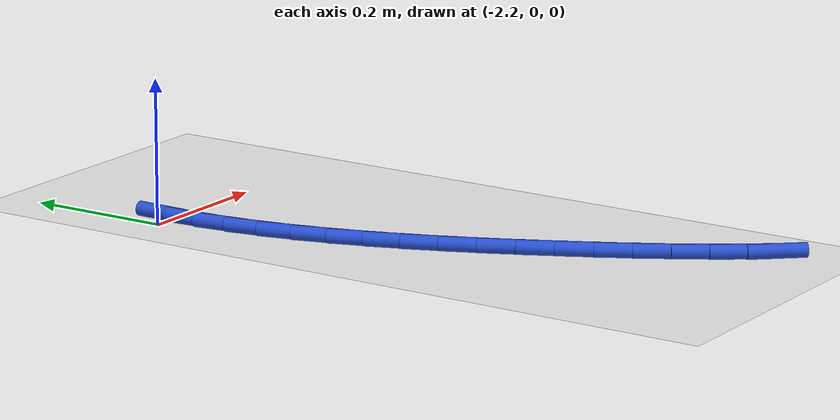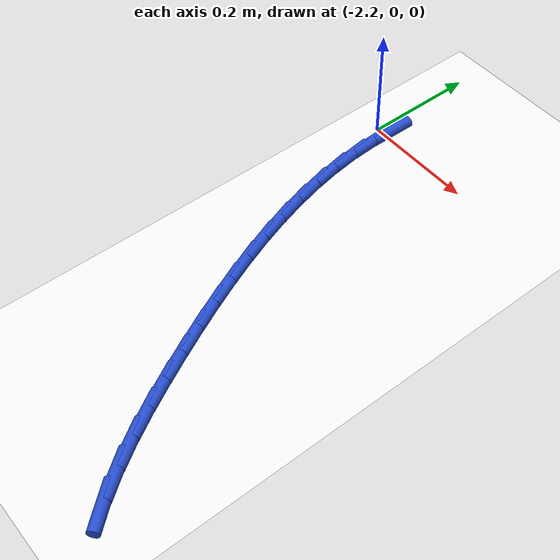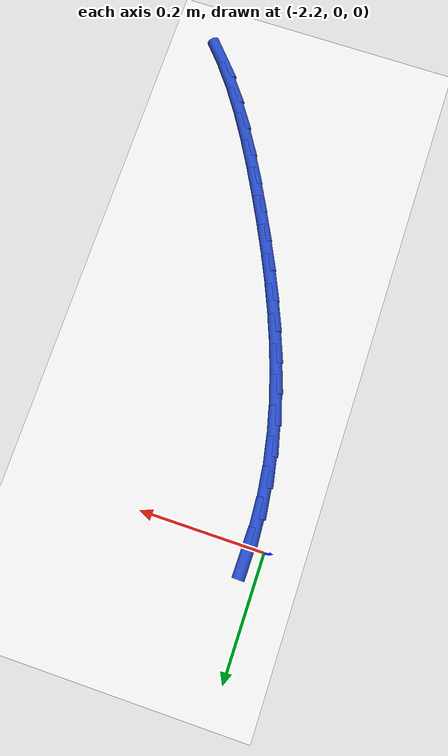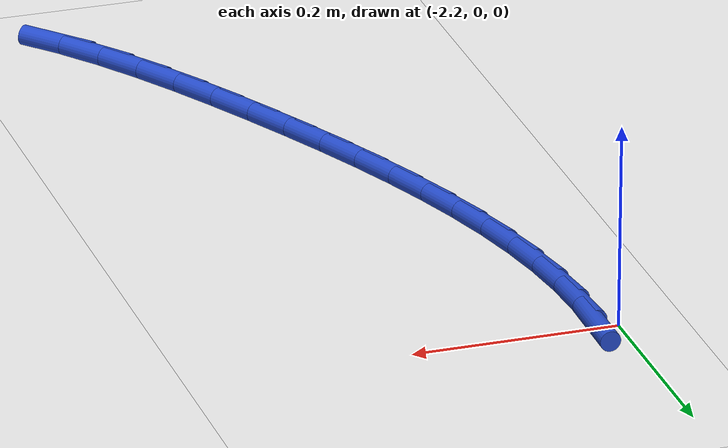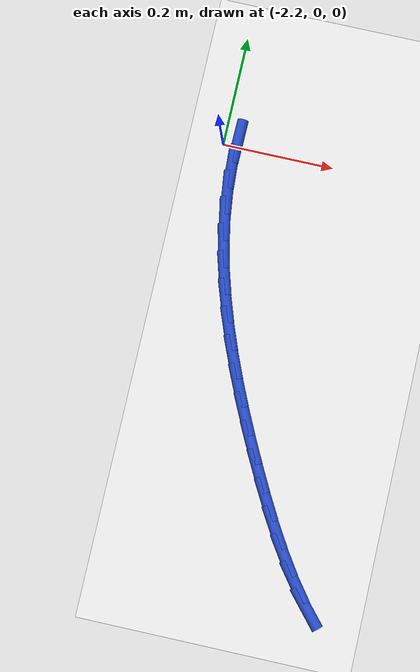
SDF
<sdf version="1.6">
 <world name="default">
  <model name="ground_plane">
   <static>1</static>
   <link name="link">
    <collision name="collision">
     <geometry><plane><normal>0 0 1</normal><size>100 100</size></plane></geometry>
     <surface><friction><ode><mu>100</mu><mu2>50</mu2></ode></friction></surface>
    </collision>
    <visual name="visual">
     <cast_shadows>0</cast_shadows>
     <geometry><plane><normal>0 0 1</normal><size>100 100</size></plane></geometry>
     <material>
      <script><uri>file://media/materials/scripts/gazebo.material</uri><name>Gazebo/WhiteGlow</name></script>
     </material>
    </visual>
   </link>
  </model>
  <model name="line">
   <link name="link_71">
    <pose>-2.1751159300494733 0.008922689165223733 0.01 0 1.57 1.5581462477677612</pose>
    <collision name="collision">
     <geometry><cylinder><radius>0.01</radius><length>0.08</length></cylinder></geometry>
    </collision>
    <visual name="visual">
     <material>
      <script><name>Gazebo/Blue</name><uri>file://media/materials/scripts/gazebo.material</uri></script>
     </material>
     <geometry><cylinder><radius>0.01</radius><length>0.08</length></cylinder></geometry>
    </visual>
   </link>
   <link name="link_72">
    <pose>-2.175711242106823 -0.03813474825442996 0.01 0 1.57 -1.5105609952214545</pose>
    <collision name="collision">
     <geometry><cylinder><radius>0.01</radius><length>0.08</length></cylinder></geometry>
    </collision>
    <visual name="visual">
     <material>
      <script><name>Gazebo/Blue</name><uri>file://media/materials/scripts/gazebo.material</uri></script>
     </material>
     <geometry><cylinder><radius>0.01</radius><length>0.08</length></cylinder></geometry>
    </visual>
   </link>
   <link name="link_73">
    <pose>-2.1728652472345336 -0.08532552364630551 0.01 0 1.57 -1.4439456758171754</pose>
    <collision name="collision">
     <geometry><cylinder><radius>0.01</radius><length>0.08</length></cylinder></geometry>
    </collision>
    <visual name="visual">
     <material>
      <script><name>Gazebo/Blue</name><uri>file://media/materials/scripts/gazebo.material</uri></script>
     </material>
     <geometry><cylinder><radius>0.01</radius><length>0.08</length></cylinder></geometry>
    </visual>
   </link>
   <link name="link_74">
    <pose>-2.1668377247913315 -0.1325870699213663 0.01 0 1.57 -1.3836874695277264</pose>
    <collision name="collision">
     <geometry><cylinder><radius>0.01</radius><length>0.08</length></cylinder></geometry>
    </collision>
    <visual name="visual">
     <material>
      <script><name>Gazebo/Blue</name><uri>file://media/materials/scripts/gazebo.material</uri></script>
     </material>
     <geometry><cylinder><radius>0.01</radius><length>0.08</length></cylinder></geometry>
    </visual>
   </link>
   <link name="link_75">
    <pose>-2.157888454135941 -0.17985681999057757 0.01 0 1.57 -1.3296607037092547</pose>
    <collision name="collision">
     <geometry><cylinder><radius>0.01</radius><length>0.08</length></cylinder></geometry>
    </collision>
    <visual name="visual">
     <material>
      <script><name>Gazebo/Blue</name><uri>file://media/materials/scripts/gazebo.material</uri></script>
     </material>
     <geometry><cylinder><radius>0.01</radius><length>0.08</length></cylinder></geometry>
    </visual>
   </link>
   <link name="link_76">
    <pose>-2.1462772146270885 -0.227072206764904 0.01 0 1.57 -1.2816027309727647</pose>
    <collision name="collision">
     <geometry><cylinder><radius>0.01</radius><length>0.08</length></cylinder></geometry>
    </collision>
    <visual name="visual">
     <material>
      <script><name>Gazebo/Blue</name><uri>file://media/materials/scripts/gazebo.material</uri></script>
     </material>
     <geometry><cylinder><radius>0.01</radius><length>0.08</length></cylinder></geometry>
    </visual>
   </link>
   <link name="link_77">
    <pose>-2.132263785623499 -0.27417066315531036 0.01 0 1.57 -1.2391771762091623</pose>
    <collision name="collision">
     <geometry><cylinder><radius>0.01</radius><length>0.08</length></cylinder></geometry>
    </collision>
    <visual name="visual">
     <material>
      <script><name>Gazebo/Blue</name><uri>file://media/materials/scripts/gazebo.material</uri></script>
     </material>
     <geometry><cylinder><radius>0.01</radius><length>0.08</length></cylinder></geometry>
    </visual>
   </link>
   <link name="link_78">
    <pose>-2.1161079464838983 -0.3210896220727619 0.01 0 1.57 -1.2020218487403973</pose>
    <collision name="collision">
     <geometry><cylinder><radius>0.01</radius><length>0.08</length></cylinder></geometry>
    </collision>
    <visual name="visual">
     <material>
      <script><name>Gazebo/Blue</name><uri>file://media/materials/scripts/gazebo.material</uri></script>
     </material>
     <geometry><cylinder><radius>0.01</radius><length>0.08</length></cylinder></geometry>
    </visual>
   </link>
   <link name="link_79">
    <pose>-2.098069476567012 -0.36776651642822206 0.01 0 1.57 -1.169782462438659</pose>
    <collision name="collision">
     <geometry><cylinder><radius>0.01</radius><length>0.08</length></cylinder></geometry>
    </collision>
    <visual name="visual">
     <material>
      <script><name>Gazebo/Blue</name><uri>file://media/materials/scripts/gazebo.material</uri></script>
     </material>
     <geometry><cylinder><radius>0.01</radius><length>0.08</length></cylinder></geometry>
    </visual>
   </link>
   <link name="link_80">
    <pose>-2.078408155231565 -0.41413877913265607 0.01 0 1.57 -1.1421350456678168</pose>
    <collision name="collision">
     <geometry><cylinder><radius>0.01</radius><length>0.08</length></cylinder></geometry>
    </collision>
    <visual name="visual">
     <material>
      <script><name>Gazebo/Blue</name><uri>file://media/materials/scripts/gazebo.material</uri></script>
     </material>
     <geometry><cylinder><radius>0.01</radius><length>0.08</length></cylinder></geometry>
    </visual>
   </link>
   <link name="link_81">
    <pose>-2.0573837618362827 -0.4601438430970286 0.01 0 1.57 -1.1188002557946248</pose>
    <collision name="collision">
     <geometry><cylinder><radius>0.01</radius><length>0.08</length></cylinder></geometry>
    </collision>
    <visual name="visual">
     <material>
      <script><name>Gazebo/Blue</name><uri>file://media/materials/scripts/gazebo.material</uri></script>
     </material>
     <geometry><cylinder><radius>0.01</radius><length>0.08</length></cylinder></geometry>
    </visual>
   </link>
   <link name="link_82">
    <pose>-2.0352560757398903 -0.505719141232305 0.01 0 1.57 -1.0995524748038297</pose>
    <collision name="collision">
     <geometry><cylinder><radius>0.01</radius><length>0.08</length></cylinder></geometry>
    </collision>
    <visual name="visual">
     <material>
      <script><name>Gazebo/Blue</name><uri>file://media/materials/scripts/gazebo.material</uri></script>
     </material>
     <geometry><cylinder><radius>0.01</radius><length>0.08</length></cylinder></geometry>
    </visual>
   </link>
   <link name="link_83">
    <pose>-2.012284876301115 -0.5508021064494486 0.01 0 1.57 -1.0823226997321762</pose>
    <collision name="collision">
     <geometry><cylinder><radius>0.01</radius><length>0.08</length></cylinder></geometry>
    </collision>
    <visual name="visual">
     <material>
      <script><name>Gazebo/Blue</name><uri>file://media/materials/scripts/gazebo.material</uri></script>
     </material>
     <geometry><cylinder><radius>0.01</radius><length>0.08</length></cylinder></geometry>
    </visual>
   </link>
   <link name="link_84">
    <pose>-1.9886460659519651 -0.5952836937828245 0.01 0 1.57 -1.0580155388198023</pose>
    <collision name="collision">
     <geometry><cylinder><radius>0.01</radius><length>0.08</length></cylinder></geometry>
    </collision>
    <visual name="visual">
     <material>
      <script><name>Gazebo/Blue</name><uri>file://media/materials/scripts/gazebo.material</uri></script>
     </material>
     <geometry><cylinder><radius>0.01</radius><length>0.08</length></cylinder></geometry>
    </visual>
   </link>
   <link name="link_85">
    <pose>-1.96412429458941 -0.6388380574402127 0.01 0 1.57 -1.0235946155438058</pose>
    <collision name="collision">
     <geometry><cylinder><radius>0.01</radius><length>0.08</length></cylinder></geometry>
    </collision>
    <visual name="visual">
     <material>
      <script><name>Gazebo/Blue</name><uri>file://media/materials/scripts/gazebo.material</uri></script>
     </material>
     <geometry><cylinder><radius>0.01</radius><length>0.08</length></cylinder></geometry>
    </visual>
   </link>
   <link name="link_86">
    <pose>-1.938390222253706 -0.6810761875781883 0.01 0 1.57 -0.9784711849066106</pose>
    <collision name="collision">
     <geometry><cylinder><radius>0.01</radius><length>0.08</length></cylinder></geometry>
    </collision>
    <visual name="visual">
     <material>
      <script><name>Gazebo/Blue</name><uri>file://media/materials/scripts/gazebo.material</uri></script>
     </material>
     <geometry><cylinder><radius>0.01</radius><length>0.08</length></cylinder></geometry>
    </visual>
   </link>
   <link name="link_87">
    <pose>-1.911114495838341 -0.7216090670684413 0.01 0 1.57 -0.9220252524009065</pose>
    <collision name="collision">
     <geometry><cylinder><radius>0.01</radius><length>0.08</length></cylinder></geometry>
    </collision>
    <visual name="visual">
     <material>
      <script><name>Gazebo/Blue</name><uri>file://media/materials/scripts/gazebo.material</uri></script>
     </material>
     <geometry><cylinder><radius>0.01</radius><length>0.08</length></cylinder></geometry>
    </visual>
   </link>
   <link name="link_88">
    <pose>-1.8819677622368047 -0.7600476787826599 0.01 0 1.57 -0.8537619992844389</pose>
    <collision name="collision">
     <geometry><cylinder><radius>0.01</radius><length>0.08</length></cylinder></geometry>
    </collision>
    <visual name="visual">
     <material>
      <script><name>Gazebo/Blue</name><uri>file://media/materials/scripts/gazebo.material</uri></script>
     </material>
     <geometry><cylinder><radius>0.01</radius><length>0.08</length></cylinder></geometry>
    </visual>
   </link>
  </model>
 </world>
</sdf>
